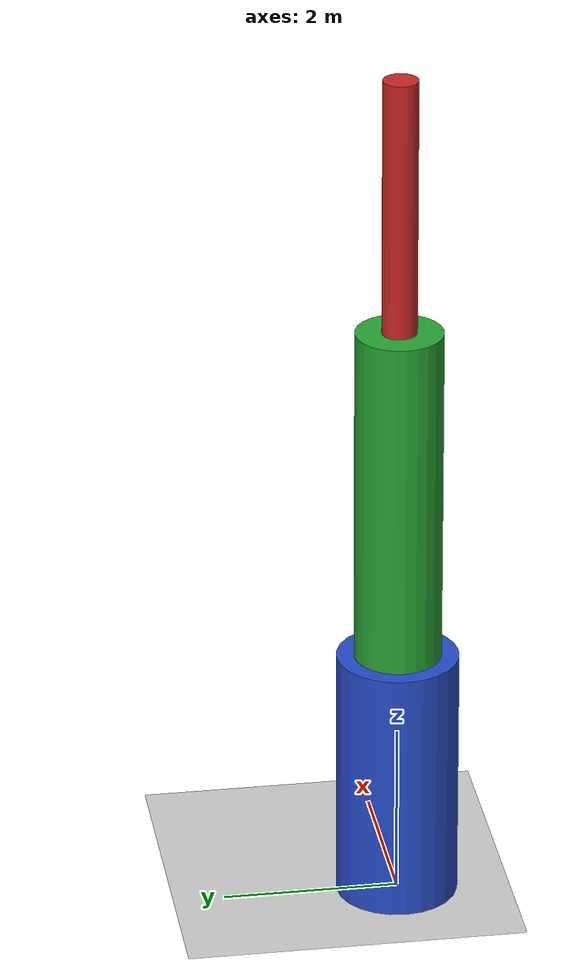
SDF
<sdf version="1.5">
 <world name="default">
  <include><uri>model://sun</uri></include>
  <include><uri>model://ground_plane</uri></include>
  <include><uri>model://asphalt_plane</uri></include>
  <include><uri>model://cilindro_H3_R070</uri></include>
  <include><uri>model://cilindro_H5_R020</uri></include>
  <include><uri>model://cilindro_H5_R050</uri></include>
  <plugin name="ros_interface_plugin" filename="librotors_gazebo_ros_interface_plugin.so"/>
  <physics name="default_physics" default="0" type="ode">
   <gravity>0 0 -9.8066</gravity>
   <ode>
    <solver>
     <type>quick</type>
     <iters>10</iters>
     <sor>1.3</sor>
     <use_dynamic_moi_rescaling>0</use_dynamic_moi_rescaling>
    </solver>
    <constraints>
     <cfm>0</cfm>
     <erp>0.2</erp>
     <contact_max_correcting_vel>100</contact_max_correcting_vel>
     <contact_surface_layer>0.001</contact_surface_layer>
    </constraints>
   </ode>
   <max_step_size>0.002</max_step_size>
   <real_time_factor>1</real_time_factor>
   <real_time_update_rate>500</real_time_update_rate>
   <magnetic_field>6e-06 2.3e-05 -4.2e-05</magnetic_field>
  </physics>
 </world>
</sdf>

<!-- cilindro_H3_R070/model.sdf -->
<sdf version='1.7'>
  <model name='cilindro_H3_R070'>
    <static>1</static>
    <link name='link'>
      <inertial>
        <mass>1</mass>
        <inertia>
          <ixx>0.145833</ixx>
          <ixy>0</ixy>
          <ixz>0</ixz>
          <iyy>0.145833</iyy>
          <iyz>0</iyz>
          <izz>0.125</izz>
        </inertia>
        <pose>0 0 1.5 0 -0 0</pose>
      </inertial>
      <self_collide>0</self_collide>
      <enable_wind>0</enable_wind>
      <kinematic>0</kinematic>
      <pose>0 0 1.5 0 -0 0</pose>
      <gravity>1</gravity>
      <visual name='visual'>
        <geometry>
          <cylinder>
            <radius>0.7</radius>
            <length>3</length>
          </cylinder>
        </geometry>
        <material>
          <script>
            <name>Gazebo/Blue</name>
            <uri>file://media/materials/scripts/gazebo.material</uri>
          </script>
          <shader type='pixel'>
            <normal_map>__default__</normal_map>
          </shader>
          <ambient>0 0 1 1</ambient>
          <diffuse>0 0 1 1</diffuse>
          <specular>0.1 0.1 0.1 1</specular>
          <emissive>0 0 0 1</emissive>
        </material>
        <pose>0 0 0 0 -0 0</pose>
        <transparency>0</transparency>
        <cast_shadows>1</cast_shadows>
      </visual>
      <collision name='collision'>
        <laser_retro>0</laser_retro>
        <max_contacts>10</max_contacts>
        <pose>0 0 0 0 -0 0</pose>
        <geometry>
          <cylinder>
            <radius>0.7</radius>
            <length>3</length>
          </cylinder>
        </geometry>
        <surface>
          <friction>
            <ode>
              <mu>1</mu>
              <mu2>1</mu2>
              <fdir1>0 0 0</fdir1>
              <slip1>0</slip1>
              <slip2>0</slip2>
            </ode>
            <torsional>
              <coefficient>1</coefficient>
              <patch_radius>0</patch_radius>
              <surface_radius>0</surface_radius>
              <use_patch_radius>1</use_patch_radius>
              <ode>
                <slip>0</slip>
              </ode>
            </torsional>
          </friction>
          <bounce>
            <restitution_coefficient>0</restitution_coefficient>
            <threshold>1e+06</threshold>
          </bounce>
          <contact>
            <collide_without_contact>0</collide_without_contact>
            <collide_without_contact_bitmask>1</collide_without_contact_bitmask>
            <collide_bitmask>1</collide_bitmask>
            <ode>
              <soft_cfm>0</soft_cfm>
              <soft_erp>0.2</soft_erp>
              <kp>1e+13</kp>
              <kd>1</kd>
              <max_vel>0.01</max_vel>
              <min_depth>0</min_depth>
            </ode>
            <bullet>
              <split_impulse>1</split_impulse>
              <split_impulse_penetration_threshold>-0.01</split_impulse_penetration_threshold>
              <soft_cfm>0</soft_cfm>
              <soft_erp>0.2</soft_erp>
              <kp>1e+13</kp>
              <kd>1</kd>
            </bullet>
          </contact>
        </surface>
      </collision>
    </link>
    <allow_auto_disable>1</allow_auto_disable>
  </model>
</sdf>

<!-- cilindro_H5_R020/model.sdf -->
<sdf version='1.7'>
  <model name='cilindro_H5_R020'>
    <static>1</static>
    <link name='link'>
      <inertial>
        <mass>1</mass>
        <inertia>
          <ixx>0.145833</ixx>
          <ixy>0</ixy>
          <ixz>0</ixz>
          <iyy>0.145833</iyy>
          <iyz>0</iyz>
          <izz>0.125</izz>
        </inertia>
        <pose>0 0 5 0 -0 0</pose>
      </inertial>
      <self_collide>0</self_collide>
      <enable_wind>0</enable_wind>
      <kinematic>0</kinematic>
      <pose>0 0 5 0 -0 0</pose>
      <gravity>1</gravity>
      <visual name='visual'>
        <geometry>
          <cylinder>
            <radius>0.2</radius>
            <length>10</length>
          </cylinder>
        </geometry>
        <material>
          <script>
            <name>Gazebo/Red</name>
            <uri>file://media/materials/scripts/gazebo.material</uri>
          </script>
          <shader type='pixel'>
            <normal_map>__default__</normal_map>
          </shader>
          <ambient>1 0 0 1</ambient>
          <diffuse>1 0 0 1</diffuse>
          <specular>0.1 0.1 0.1 1</specular>
          <emissive>0 0 0 1</emissive>
        </material>
        <pose>0 0 0 0 -0 0</pose>
        <transparency>0</transparency>
        <cast_shadows>1</cast_shadows>
      </visual>
      <collision name='collision'>
        <laser_retro>0</laser_retro>
        <max_contacts>10</max_contacts>
        <pose>0 0 0 0 -0 0</pose>
        <geometry>
          <cylinder>
            <radius>0.2</radius>
            <length>10</length>
          </cylinder>
        </geometry>
        <surface>
          <friction>
            <ode>
              <mu>1</mu>
              <mu2>1</mu2>
              <fdir1>0 0 0</fdir1>
              <slip1>0</slip1>
              <slip2>0</slip2>
            </ode>
            <torsional>
              <coefficient>1</coefficient>
              <patch_radius>0</patch_radius>
              <surface_radius>0</surface_radius>
              <use_patch_radius>1</use_patch_radius>
              <ode>
                <slip>0</slip>
              </ode>
            </torsional>
          </friction>
          <bounce>
            <restitution_coefficient>0</restitution_coefficient>
            <threshold>1e+06</threshold>
          </bounce>
          <contact>
            <collide_without_contact>0</collide_without_contact>
            <collide_without_contact_bitmask>1</collide_without_contact_bitmask>
            <collide_bitmask>1</collide_bitmask>
            <ode>
              <soft_cfm>0</soft_cfm>
              <soft_erp>0.2</soft_erp>
              <kp>1e+13</kp>
              <kd>1</kd>
              <max_vel>0.01</max_vel>
              <min_depth>0</min_depth>
            </ode>
            <bullet>
              <split_impulse>1</split_impulse>
              <split_impulse_penetration_threshold>-0.01</split_impulse_penetration_threshold>
              <soft_cfm>0</soft_cfm>
              <soft_erp>0.2</soft_erp>
              <kp>1e+13</kp>
              <kd>1</kd>
            </bullet>
          </contact>
        </surface>
      </collision>
    </link>
    <allow_auto_disable>1</allow_auto_disable>
  </model>
</sdf>

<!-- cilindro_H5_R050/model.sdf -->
<sdf version='1.7'>
  <model name='cilindro_H5_R050'>
    <static>1</static>
    <link name='link'>
      <inertial>
        <mass>1</mass>
        <inertia>
          <ixx>0.145833</ixx>
          <ixy>0</ixy>
          <ixz>0</ixz>
          <iyy>0.145833</iyy>
          <iyz>0</iyz>
          <izz>0.125</izz>
        </inertia>
        <pose>0 0 3.5 0 -0 0</pose>
      </inertial>
      <self_collide>0</self_collide>
      <enable_wind>0</enable_wind>
      <kinematic>0</kinematic>
      <pose>0 0 3.5 0 -0 0</pose>
      <gravity>1</gravity>
      <visual name='visual'>
        <geometry>
          <cylinder>
            <radius>0.5</radius>
            <length>7</length>
          </cylinder>
        </geometry>
        <material>
          <script>
            <name>Gazebo/Green</name>
            <uri>file://media/materials/scripts/gazebo.material</uri>
          </script>
          <shader type='pixel'>
            <normal_map>__default__</normal_map>
          </shader>
          <ambient>0 1 0 1</ambient>
          <diffuse>0 1 0 1</diffuse>
          <specular>0.1 0.1 0.1 1</specular>
          <emissive>0 0 0 1</emissive>
        </material>
        <pose>0 0 0 0 -0 0</pose>
        <transparency>0</transparency>
        <cast_shadows>1</cast_shadows>
      </visual>
      <collision name='collision'>
        <laser_retro>0</laser_retro>
        <max_contacts>10</max_contacts>
        <pose>0 0 0 0 -0 0</pose>
        <geometry>
          <cylinder>
            <radius>0.5</radius>
            <length>7</length>
          </cylinder>
        </geometry>
        <surface>
          <friction>
            <ode>
              <mu>1</mu>
              <mu2>1</mu2>
              <fdir1>0 0 0</fdir1>
              <slip1>0</slip1>
              <slip2>0</slip2>
            </ode>
            <torsional>
              <coefficient>1</coefficient>
              <patch_radius>0</patch_radius>
              <surface_radius>0</surface_radius>
              <use_patch_radius>1</use_patch_radius>
              <ode>
                <slip>0</slip>
              </ode>
            </torsional>
          </friction>
          <bounce>
            <restitution_coefficient>0</restitution_coefficient>
            <threshold>1e+06</threshold>
          </bounce>
          <contact>
            <collide_without_contact>0</collide_without_contact>
            <collide_without_contact_bitmask>1</collide_without_contact_bitmask>
            <collide_bitmask>1</collide_bitmask>
            <ode>
              <soft_cfm>0</soft_cfm>
              <soft_erp>0.2</soft_erp>
              <kp>1e+13</kp>
              <kd>1</kd>
              <max_vel>0.01</max_vel>
              <min_depth>0</min_depth>
            </ode>
            <bullet>
              <split_impulse>1</split_impulse>
              <split_impulse_penetration_threshold>-0.01</split_impulse_penetration_threshold>
              <soft_cfm>0</soft_cfm>
              <soft_erp>0.2</soft_erp>
              <kp>1e+13</kp>
              <kd>1</kd>
            </bullet>
          </contact>
        </surface>
      </collision>
    </link>
    <allow_auto_disable>1</allow_auto_disable>
  </model>
</sdf>
